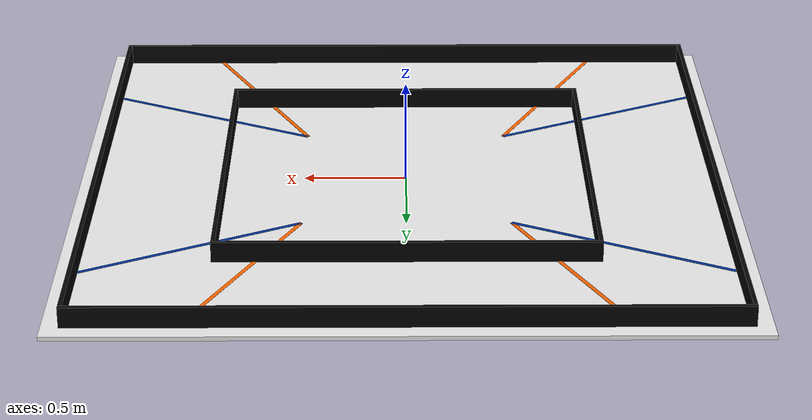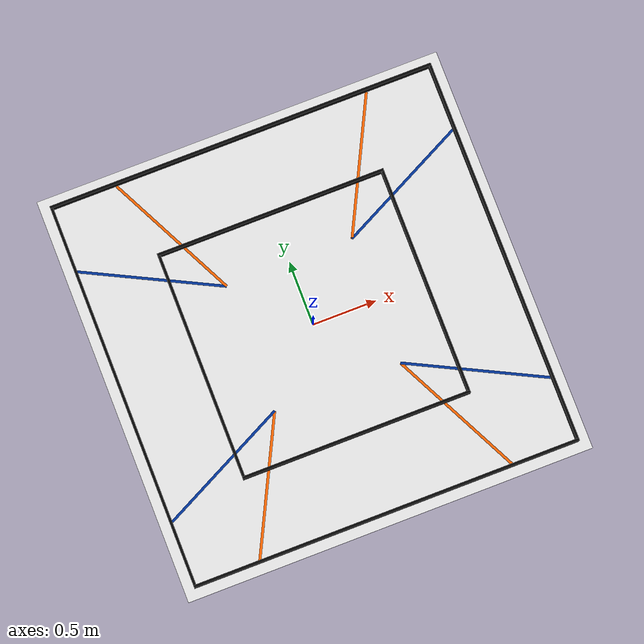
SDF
<?xml version="1.0" ?>
<!-- |    This document was autogenerated by xacro from wro_field.sdf.xacro            | -->
<!-- |    EDITING THIS FILE BY HAND IS NOT RECOMMENDED                                 | -->
<sdf version="1.9">
  <!-- ========================== ARGUMENTS ========================== -->
  <!-- ========================== PROPERTIES ========================= -->
  <!-- =========================== MACROS ============================ -->
  <!-- ============================ WORLD ============================ -->
  <world name="wro_future_engineers">
    <gravity>0 0 -9.80665</gravity>
    <magnetic_field>6.0e-6 2.3e-5 -4.2e-5</magnetic_field>
    <atmosphere type="adiabatic"/>
    <physics name="wro_physics" type="ode">
      <max_step_size>0.001</max_step_size>
      <real_time_factor>1.0</real_time_factor>
      <real_time_update_rate>1000</real_time_update_rate>
      <ode>
        <solver>
          <type>quick</type>
          <iters>100</iters>
          <sor>1.3</sor>
          <use_dynamic_moi_rescaling>true</use_dynamic_moi_rescaling>
        </solver>
        <constraints>
          <cfm>0.0</cfm>
          <erp>0.2</erp>
          <contact_max_correcting_vel>100.0</contact_max_correcting_vel>
          <contact_surface_layer>0.001</contact_surface_layer>
        </constraints>
      </ode>
    </physics>
    <!-- Gazebo Sim systems -->
    <plugin filename="gz-sim-physics-system" name="gz::sim::systems::Physics"/>
    <plugin filename="gz-sim-user-commands-system" name="gz::sim::systems::UserCommands"/>
    <plugin filename="gz-sim-scene-broadcaster-system" name="gz::sim::systems::SceneBroadcaster"/>
    <plugin filename="gz-sim-sensors-system" name="gz::sim::systems::Sensors">
      <render_engine>ogre2</render_engine>
    </plugin>
    <plugin filename="gz-sim-imu-system" name="gz::sim::systems::Imu"/>
    <!-- Lighting -->
    <scene>
      <ambient>0.65 0.65 0.65 1</ambient>
      <background>0.75 0.80 0.85 1</background>
      <shadows>true</shadows>
      <grid>false</grid>
    </scene>
    <light name="sun" type="directional">
      <cast_shadows>true</cast_shadows>
      <pose>0 0 8 0 0 0</pose>
      <diffuse>0.95 0.95 0.95 1</diffuse>
      <specular>0.15 0.15 0.15 1</specular>
      <attenuation>
        <range>100</range>
        <constant>0.9</constant>
        <linear>0.01</linear>
        <quadratic>0.001</quadratic>
      </attenuation>
      <direction>-0.3 -0.3 -1.0</direction>
    </light>
    <light name="field_fill_light" type="point">
      <cast_shadows>false</cast_shadows>
      <pose>0 0 4 0 0 0</pose>
      <diffuse>0.65 0.65 0.65 1</diffuse>
      <specular>0.05 0.05 0.05 1</specular>
      <attenuation>
        <range>12</range>
        <constant>0.8</constant>
        <linear>0.05</linear>
        <quadratic>0.01</quadratic>
      </attenuation>
    </light>
    <!-- ========================= FIELD MAT ========================= -->
    <model name="wro_field_mat">
      <static>true</static>
      <!-- Top surface is at Z=0 -->
      <pose>0 0 -0.01 0 0 0</pose>
      <link name="field_mat_link">
        <collision name="field_mat_collision">
          <geometry>
            <box>
              <size>3.2 3.2 0.02</size>
            </box>
          </geometry>
          <surface>
            <friction>
              <ode>
                <mu>0.80</mu>
                <mu2>0.80</mu2>
                <fdir1>1 0 0</fdir1>
              </ode>
              <torsional>
                <coefficient>0.20</coefficient>
                <use_patch_radius>true</use_patch_radius>
                <patch_radius>0.01</patch_radius>
                <surface_radius>0.01</surface_radius>
              </torsional>
            </friction>
            <contact>
              <collide_bitmask>65535</collide_bitmask>
              <ode>
                <kp>1000000</kp>
                <kd>100</kd>
                <max_vel>0.01</max_vel>
                <min_depth>0.001</min_depth>
              </ode>
            </contact>
          </surface>
        </collision>
        <visual name="field_mat_visual">
          <geometry>
            <box>
              <size>3.2 3.2 0.02</size>
            </box>
          </geometry>
          <material>
            <ambient>0.92 0.92 0.92 1</ambient>
            <diffuse>0.92 0.92 0.92 1</diffuse>
            <specular>0.01 0.01 0.01 1</specular>
            <pbr>
              <metal>
                <roughness>1.0</roughness>
                <metalness>0.0</metalness>
              </metal>
            </pbr>
          </material>
        </visual>
      </link>
    </model>
    <!-- ======================== OUTER WALLS ========================

         The inside faces are positioned at +/- 1.500 m.
         The selected wall thickness extends outside the track.
    -->
    <model name="outer_wall_north">
      <static>true</static>
      <pose>0 1.51 0.05 0 0 0</pose>
      <link name="link">
        <collision name="collision">
          <geometry>
            <box>
              <size>3.04 0.02 0.1</size>
            </box>
          </geometry>
          <surface>
            <friction>
              <ode>
                <mu>0.80</mu>
                <mu2>0.80</mu2>
              </ode>
            </friction>
            <contact>
              <ode>
                <kp>1000000</kp>
                <kd>100</kd>
                <max_vel>0.01</max_vel>
                <min_depth>0.001</min_depth>
              </ode>
            </contact>
          </surface>
        </collision>
        <visual name="visual">
          <geometry>
            <box>
              <size>3.04 0.02 0.1</size>
            </box>
          </geometry>
          <material>
            <ambient>0.015 0.015 0.015 1.0</ambient>
            <diffuse>0.015 0.015 0.015 1.0</diffuse>
            <specular>0.02 0.02 0.02 1</specular>
            <pbr>
              <metal>
                <roughness>0.95</roughness>
                <metalness>0.0</metalness>
              </metal>
            </pbr>
          </material>
        </visual>
      </link>
    </model>
    <model name="outer_wall_south">
      <static>true</static>
      <pose>0 -1.51 0.05 0 0 0</pose>
      <link name="link">
        <collision name="collision">
          <geometry>
            <box>
              <size>3.04 0.02 0.1</size>
            </box>
          </geometry>
          <surface>
            <friction>
              <ode>
                <mu>0.80</mu>
                <mu2>0.80</mu2>
              </ode>
            </friction>
            <contact>
              <ode>
                <kp>1000000</kp>
                <kd>100</kd>
                <max_vel>0.01</max_vel>
                <min_depth>0.001</min_depth>
              </ode>
            </contact>
          </surface>
        </collision>
        <visual name="visual">
          <geometry>
            <box>
              <size>3.04 0.02 0.1</size>
            </box>
          </geometry>
          <material>
            <ambient>0.015 0.015 0.015 1.0</ambient>
            <diffuse>0.015 0.015 0.015 1.0</diffuse>
            <specular>0.02 0.02 0.02 1</specular>
            <pbr>
              <metal>
                <roughness>0.95</roughness>
                <metalness>0.0</metalness>
              </metal>
            </pbr>
          </material>
        </visual>
      </link>
    </model>
    <model name="outer_wall_east">
      <static>true</static>
      <pose>1.51 0 0.05 0 0 0</pose>
      <link name="link">
        <collision name="collision">
          <geometry>
            <box>
              <size>0.02 3.0 0.1</size>
            </box>
          </geometry>
          <surface>
            <friction>
              <ode>
                <mu>0.80</mu>
                <mu2>0.80</mu2>
              </ode>
            </friction>
            <contact>
              <ode>
                <kp>1000000</kp>
                <kd>100</kd>
                <max_vel>0.01</max_vel>
                <min_depth>0.001</min_depth>
              </ode>
            </contact>
          </surface>
        </collision>
        <visual name="visual">
          <geometry>
            <box>
              <size>0.02 3.0 0.1</size>
            </box>
          </geometry>
          <material>
            <ambient>0.015 0.015 0.015 1.0</ambient>
            <diffuse>0.015 0.015 0.015 1.0</diffuse>
            <specular>0.02 0.02 0.02 1</specular>
            <pbr>
              <metal>
                <roughness>0.95</roughness>
                <metalness>0.0</metalness>
              </metal>
            </pbr>
          </material>
        </visual>
      </link>
    </model>
    <model name="outer_wall_west">
      <static>true</static>
      <pose>-1.51 0 0.05 0 0 0</pose>
      <link name="link">
        <collision name="collision">
          <geometry>
            <box>
              <size>0.02 3.0 0.1</size>
            </box>
          </geometry>
          <surface>
            <friction>
              <ode>
                <mu>0.80</mu>
                <mu2>0.80</mu2>
              </ode>
            </friction>
            <contact>
              <ode>
                <kp>1000000</kp>
                <kd>100</kd>
                <max_vel>0.01</max_vel>
                <min_depth>0.001</min_depth>
              </ode>
            </contact>
          </surface>
        </collision>
        <visual name="visual">
          <geometry>
            <box>
              <size>0.02 3.0 0.1</size>
            </box>
          </geometry>
          <material>
            <ambient>0.015 0.015 0.015 1.0</ambient>
            <diffuse>0.015 0.015 0.015 1.0</diffuse>
            <specular>0.02 0.02 0.02 1</specular>
            <pbr>
              <metal>
                <roughness>0.95</roughness>
                <metalness>0.0</metalness>
              </metal>
            </pbr>
          </material>
        </visual>
      </link>
    </model>
    <model name="inner_wall_north">
      <static>true</static>
      <pose>0 0.89 0.05 0 0 0</pose>
      <link name="link">
        <collision name="collision">
          <geometry>
            <box>
              <size>1.8 0.02 0.1</size>
            </box>
          </geometry>
          <surface>
            <friction>
              <ode>
                <mu>0.80</mu>
                <mu2>0.80</mu2>
              </ode>
            </friction>
            <contact>
              <ode>
                <kp>1000000</kp>
                <kd>100</kd>
                <max_vel>0.01</max_vel>
                <min_depth>0.001</min_depth>
              </ode>
            </contact>
          </surface>
        </collision>
        <visual name="visual">
          <geometry>
            <box>
              <size>1.8 0.02 0.1</size>
            </box>
          </geometry>
          <material>
            <ambient>0.01 0.01 0.01 1.0</ambient>
            <diffuse>0.01 0.01 0.01 1.0</diffuse>
            <specular>0.02 0.02 0.02 1</specular>
            <pbr>
              <metal>
                <roughness>0.95</roughness>
                <metalness>0.0</metalness>
              </metal>
            </pbr>
          </material>
        </visual>
      </link>
    </model>
    <model name="inner_wall_south">
      <static>true</static>
      <pose>0 -0.89 0.05 0 0 0</pose>
      <link name="link">
        <collision name="collision">
          <geometry>
            <box>
              <size>1.8 0.02 0.1</size>
            </box>
          </geometry>
          <surface>
            <friction>
              <ode>
                <mu>0.80</mu>
                <mu2>0.80</mu2>
              </ode>
            </friction>
            <contact>
              <ode>
                <kp>1000000</kp>
                <kd>100</kd>
                <max_vel>0.01</max_vel>
                <min_depth>0.001</min_depth>
              </ode>
            </contact>
          </surface>
        </collision>
        <visual name="visual">
          <geometry>
            <box>
              <size>1.8 0.02 0.1</size>
            </box>
          </geometry>
          <material>
            <ambient>0.01 0.01 0.01 1.0</ambient>
            <diffuse>0.01 0.01 0.01 1.0</diffuse>
            <specular>0.02 0.02 0.02 1</specular>
            <pbr>
              <metal>
                <roughness>0.95</roughness>
                <metalness>0.0</metalness>
              </metal>
            </pbr>
          </material>
        </visual>
      </link>
    </model>
    <model name="inner_wall_east">
      <static>true</static>
      <pose>0.89 0 0.05 0 0 0</pose>
      <link name="link">
        <collision name="collision">
          <geometry>
            <box>
              <size>0.02 1.76 0.1</size>
            </box>
          </geometry>
          <surface>
            <friction>
              <ode>
                <mu>0.80</mu>
                <mu2>0.80</mu2>
              </ode>
            </friction>
            <contact>
              <ode>
                <kp>1000000</kp>
                <kd>100</kd>
                <max_vel>0.01</max_vel>
                <min_depth>0.001</min_depth>
              </ode>
            </contact>
          </surface>
        </collision>
        <visual name="visual">
          <geometry>
            <box>
              <size>0.02 1.76 0.1</size>
            </box>
          </geometry>
          <material>
            <ambient>0.01 0.01 0.01 1.0</ambient>
            <diffuse>0.01 0.01 0.01 1.0</diffuse>
            <specular>0.02 0.02 0.02 1</specular>
            <pbr>
              <metal>
                <roughness>0.95</roughness>
                <metalness>0.0</metalness>
              </metal>
            </pbr>
          </material>
        </visual>
      </link>
    </model>
    <model name="inner_wall_west">
      <static>true</static>
      <pose>-0.89 0 0.05 0 0 0</pose>
      <link name="link">
        <collision name="collision">
          <geometry>
            <box>
              <size>0.02 1.76 0.1</size>
            </box>
          </geometry>
          <surface>
            <friction>
              <ode>
                <mu>0.80</mu>
                <mu2>0.80</mu2>
              </ode>
            </friction>
            <contact>
              <ode>
                <kp>1000000</kp>
                <kd>100</kd>
                <max_vel>0.01</max_vel>
                <min_depth>0.001</min_depth>
              </ode>
            </contact>
          </surface>
        </collision>
        <visual name="visual">
          <geometry>
            <box>
              <size>0.02 1.76 0.1</size>
            </box>
          </geometry>
          <material>
            <ambient>0.01 0.01 0.01 1.0</ambient>
            <diffuse>0.01 0.01 0.01 1.0</diffuse>
            <specular>0.02 0.02 0.02 1</specular>
            <pbr>
              <metal>
                <roughness>0.95</roughness>
                <metalness>0.0</metalness>
              </metal>
            </pbr>
          </material>
        </visual>
      </link>
    </model>
    <model name="orange_line_sw">
      <static>true</static>
      <pose>-0.75 -1.0 0.0015 0 0 -2.0344439357957027</pose>
      <link name="link">
        <visual name="visual">
          <geometry>
            <box>
              <size>1.118 0.02 0.001</size>
            </box>
          </geometry>
          <material>
            <ambient>1.0 0.4 0.0 1</ambient>
            <diffuse>1.0 0.4 0.0 1</diffuse>
            <specular>0 0 0 1</specular>
          </material>
        </visual>
      </link>
    </model>
    <model name="blue_line_sw">
      <static>true</static>
      <pose>-1.0 -0.75 0.0015 0 0 -2.677945044588987</pose>
      <link name="link">
        <visual name="visual">
          <geometry>
            <box>
              <size>1.118 0.02 0.001</size>
            </box>
          </geometry>
          <material>
            <ambient>0.0 0.2 0.6 1</ambient>
            <diffuse>0.0 0.2 0.6 1</diffuse>
            <specular>0 0 0 1</specular>
          </material>
        </visual>
      </link>
    </model>
    <model name="orange_line_se">
      <static>true</static>
      <pose>0.75 -1.0 0.0015 0 0 -1.1071487177940904</pose>
      <link name="link">
        <visual name="visual">
          <geometry>
            <box>
              <size>1.118 0.02 0.001</size>
            </box>
          </geometry>
          <material>
            <ambient>1.0 0.4 0.0 1</ambient>
            <diffuse>1.0 0.4 0.0 1</diffuse>
            <specular>0 0 0 1</specular>
          </material>
        </visual>
      </link>
    </model>
    <model name="blue_line_se">
      <static>true</static>
      <pose>1.0 -0.75 0.0015 0 0 -0.4636476090008061</pose>
      <link name="link">
        <visual name="visual">
          <geometry>
            <box>
              <size>1.118 0.02 0.001</size>
            </box>
          </geometry>
          <material>
            <ambient>0.0 0.2 0.6 1</ambient>
            <diffuse>0.0 0.2 0.6 1</diffuse>
            <specular>0 0 0 1</specular>
          </material>
        </visual>
      </link>
    </model>
    <model name="orange_line_ne">
      <static>true</static>
      <pose>0.75 1.0 0.0015 0 0 1.1071487177940904</pose>
      <link name="link">
        <visual name="visual">
          <geometry>
            <box>
              <size>1.118 0.02 0.001</size>
            </box>
          </geometry>
          <material>
            <ambient>1.0 0.4 0.0 1</ambient>
            <diffuse>1.0 0.4 0.0 1</diffuse>
            <specular>0 0 0 1</specular>
          </material>
        </visual>
      </link>
    </model>
    <model name="blue_line_ne">
      <static>true</static>
      <pose>1.0 0.75 0.0015 0 0 0.4636476090008061</pose>
      <link name="link">
        <visual name="visual">
          <geometry>
            <box>
              <size>1.118 0.02 0.001</size>
            </box>
          </geometry>
          <material>
            <ambient>0.0 0.2 0.6 1</ambient>
            <diffuse>0.0 0.2 0.6 1</diffuse>
            <specular>0 0 0 1</specular>
          </material>
        </visual>
      </link>
    </model>
    <model name="orange_line_nw">
      <static>true</static>
      <pose>-0.75 1.0 0.0015 0 0 2.0344439357957027</pose>
      <link name="link">
        <visual name="visual">
          <geometry>
            <box>
              <size>1.118 0.02 0.001</size>
            </box>
          </geometry>
          <material>
            <ambient>1.0 0.4 0.0 1</ambient>
            <diffuse>1.0 0.4 0.0 1</diffuse>
            <specular>0 0 0 1</specular>
          </material>
        </visual>
      </link>
    </model>
    <model name="blue_line_nw">
      <static>true</static>
      <pose>-1.0 0.75 0.0015 0 0 2.677945044588987</pose>
      <link name="link">
        <visual name="visual">
          <geometry>
            <box>
              <size>1.118 0.02 0.001</size>
            </box>
          </geometry>
          <material>
            <ambient>0.0 0.2 0.6 1</ambient>
            <diffuse>0.0 0.2 0.6 1</diffuse>
            <specular>0 0 0 1</specular>
          </material>
        </visual>
      </link>
    </model>
    <!-- ============================ GUI ============================ -->
    <gui fullscreen="0">
      <plugin filename="GzScene3D" name="3D View">
        <gz-gui>
          <title>WRO Future Engineers 2026</title>
          <property key="showTitleBar" type="bool">true</property>
          <property key="state" type="string">docked</property>
        </gz-gui>
        <engine>ogre2</engine>
        <scene>scene</scene>
        <ambient_light>0.5 0.5 0.5</ambient_light>
        <background_color>0.75 0.80 0.85</background_color>
        <camera_pose>4.4 -4.4 4.8 0 0.62 2.35</camera_pose>
      </plugin>
      <plugin filename="WorldControl" name="World control">
        <gz-gui>
          <title>World control</title>
          <property key="showTitleBar" type="bool">true</property>
          <property key="resizable" type="bool">true</property>
          <property key="width" type="double">280</property>
          <property key="height" type="double">120</property>
          <property key="state" type="string">floating</property>
        </gz-gui>
        <play_pause>true</play_pause>
        <step>true</step>
        <start_paused>false</start_paused>
      </plugin>
      <plugin filename="WorldStats" name="World statistics">
        <gz-gui>
          <title>World statistics</title>
          <property key="showTitleBar" type="bool">true</property>
          <property key="resizable" type="bool">true</property>
          <property key="width" type="double">280</property>
          <property key="height" type="double">110</property>
          <property key="state" type="string">floating</property>
        </gz-gui>
        <sim_time>true</sim_time>
        <real_time>true</real_time>
        <real_time_factor>true</real_time_factor>
        <iterations>true</iterations>
      </plugin>
      <plugin filename="EntityTree" name="Entity tree">
        <gz-gui>
          <title>Entities</title>
          <property key="showTitleBar" type="bool">true</property>
          <property key="resizable" type="bool">true</property>
          <property key="width" type="double">280</property>
          <property key="height" type="double">400</property>
          <property key="state" type="string">docked</property>
        </gz-gui>
      </plugin>
    </gui>
  </world>
</sdf>
